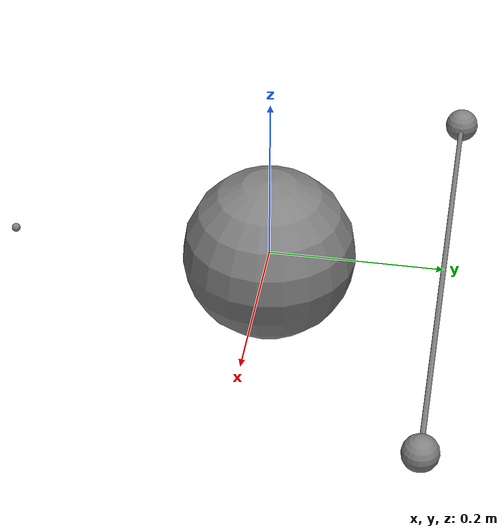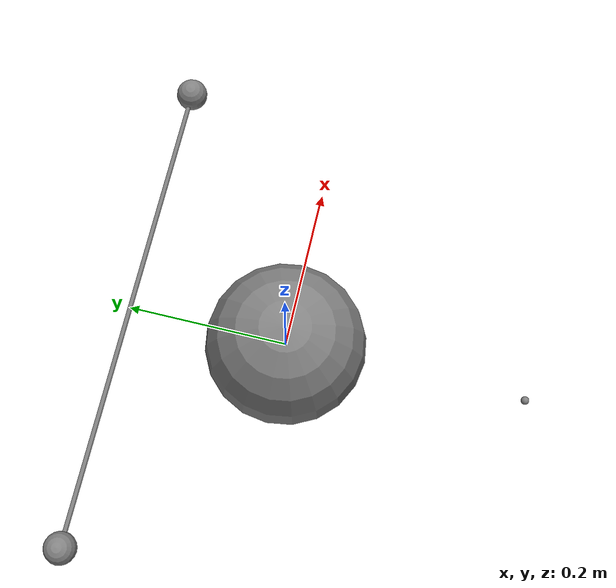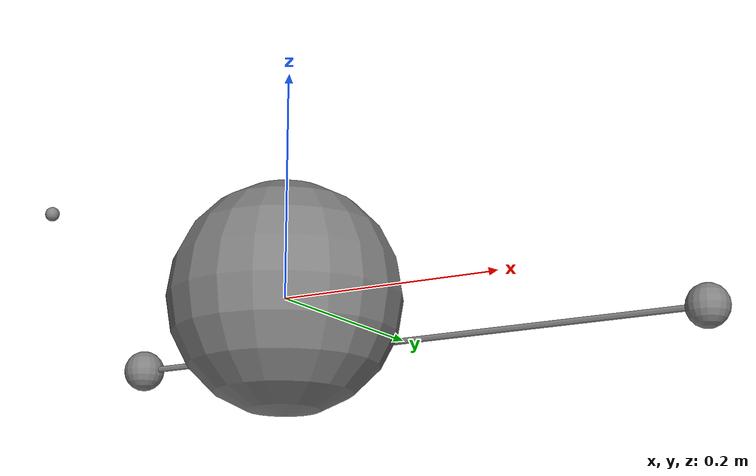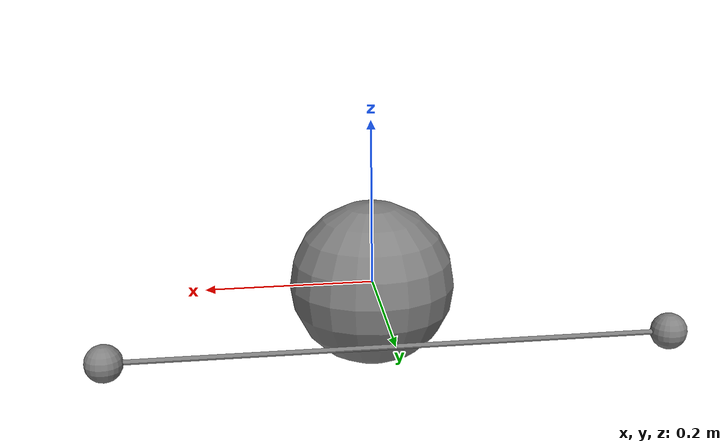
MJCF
<mujoco>
  <worldbody>
    <body name="b1" pos="-0.3 0.2 0">
      <joint name="j1" type="hinge" axis="0 0 1"/>
      <geom type="sphere" size="0.02"/>
      <site name="s1" pos="0 0 0"/>
    </body>
    <body name="wrap_body" pos="0 0 0">
      <geom name="wrap_sphere" type="sphere" size="0.1"/>
      <site name="side_hint" pos="0 -0.3 0"/>
    </body>
    <body name="b2" pos="0.3 0.2 0">
      <joint name="j2" type="hinge" axis="0 0 1"/>
      <geom type="sphere" size="0.02"/>
      <site name="s2" pos="0 0 0"/>
    </body>
  </worldbody>
  <tendon>
    <spatial name="t_forced">
      <site site="s1"/>
      <geom geom="wrap_sphere" sidesite="side_hint"/>
      <site site="s2"/>
    </spatial>
  </tendon>
</mujoco>
